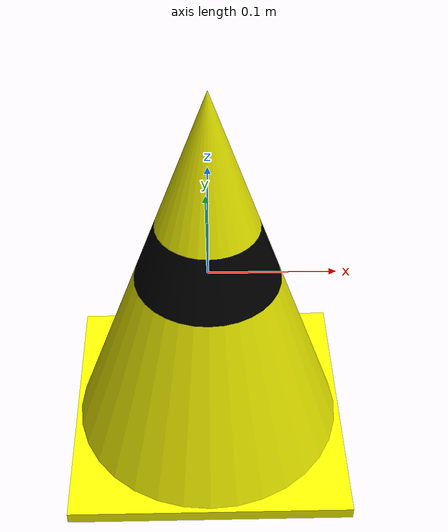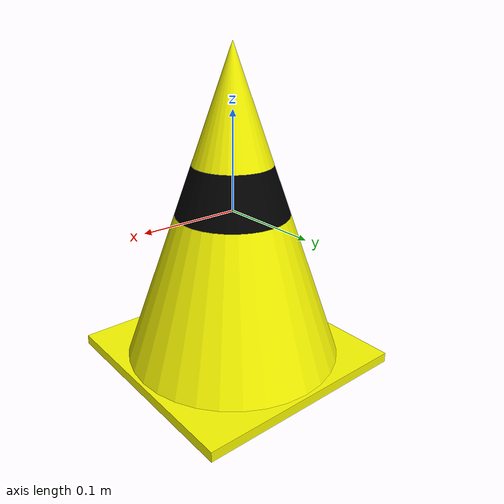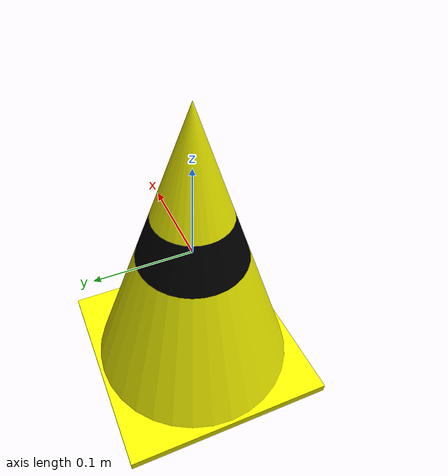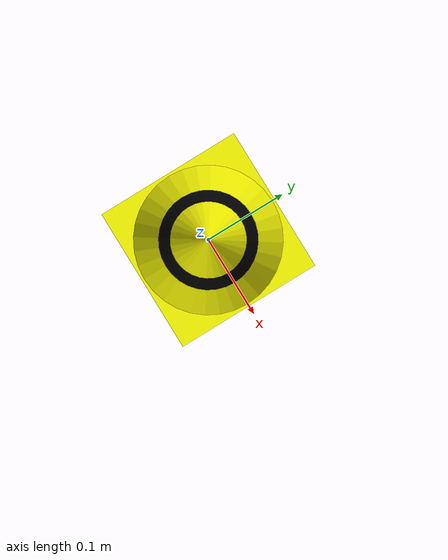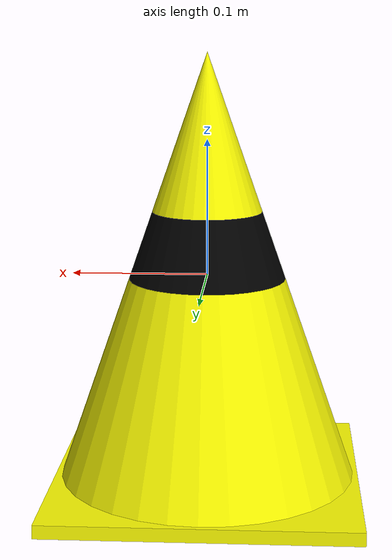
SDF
<?xml version="1.0" ?>
<sdf version="1.9">
  <model name="cone_yellow">
    <static>true</static>
    <link name="link">
      <collision name="collision">
        <pose>0 0 -0.1625 0 0 0</pose>
        <geometry><mesh><uri>model://cone_yellow/meshes/cone.stl</uri></mesh></geometry>
      </collision>
      <visual name="body">
        <pose>0 0 -0.1625 0 0 0</pose>
        <geometry><mesh><uri>model://cone_yellow/meshes/body.stl</uri></mesh></geometry>
        <material><ambient>1.0 1.0 0.0 1</ambient><diffuse>1.0 1.0 0.0 1</diffuse></material>
      </visual>
      <visual name="stripe">
        <pose>0 0 -0.1625 0 0 0</pose>
        <geometry><mesh><uri>model://cone_yellow/meshes/stripe.stl</uri></mesh></geometry>
        <material><ambient>0.0 0.0 0.0 1</ambient><diffuse>0.0 0.0 0.0 1</diffuse></material>
      </visual>
    </link>
  </model>
</sdf>
